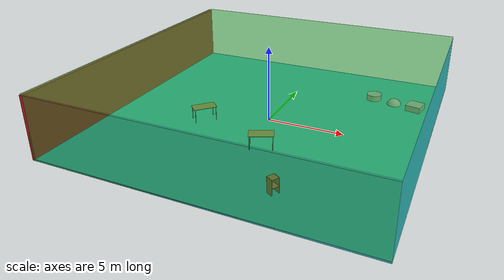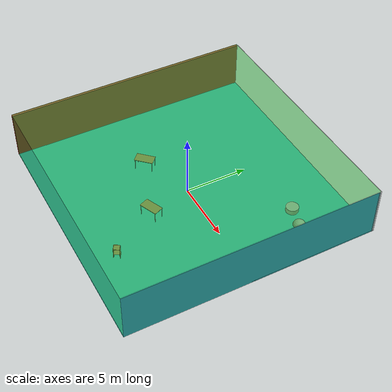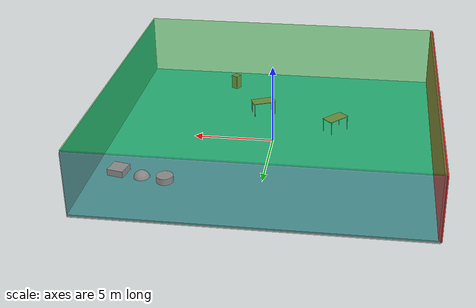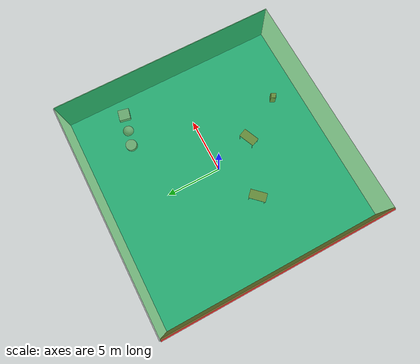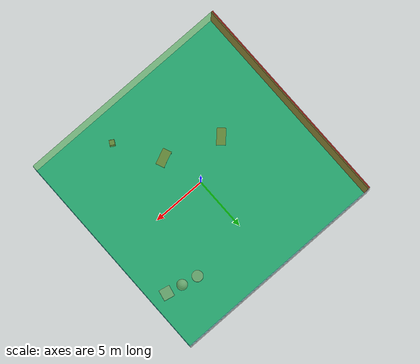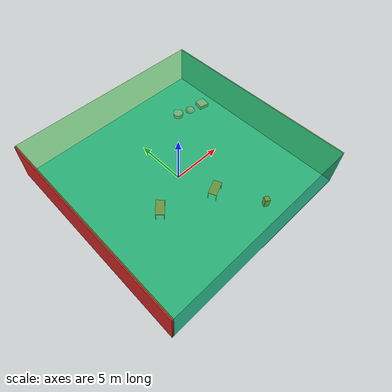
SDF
<sdf version="1.4">
 <world name="default">
  <physics type="ode">
   <max_step_size>0.001</max_step_size>
   <real_time_factor>1</real_time_factor>
   <real_time_update_rate>1000</real_time_update_rate>
   <gravity>0 0 -9.8</gravity>
  </physics>
  <scene><ambient>0.4 0.4 0.4 1</ambient><background>0.7 0.7 0.7 1</background><shadows>1</shadows></scene>
  <model name="Surrounding">
   <static>1</static>
   <link name="Ceiling">
    <collision name="Ceiling_Collision"><geometry><box><size>20 20 0.1</size></box></geometry></collision>
    <visual name="Ceiling_Visual">
     <geometry><box><size>20 20 0.1</size></box></geometry>
     <material>
      <script><uri>file://media/materials/scripts/gazebo.material</uri><name>Gazebo/GreenTransparent</name></script>
     </material>
    </visual>
    <pose>0 0 4.05 0 0 0</pose>
   </link>
   <link name="Wall_South">
    <collision name="Wall_South_Collision">
     <geometry><box><size>20 0 4</size></box></geometry>
     <pose>0 0 2 0 -0 0</pose>
    </collision>
    <visual name="Wall_South_Visual">
     <pose>0 0 2 0 -0 0</pose>
     <geometry><box><size>20 0 4</size></box></geometry>
     <material>
      <script><uri>file://media/materials/scripts/gazebo.material</uri><name>Gazebo/GreenTransparent</name></script>
     </material>
    </visual>
    <velocity_decay><linear>0</linear><angular>0</angular></velocity_decay>
    <pose>0 -10 0 0 -0 0</pose>
   </link>
   <link name="Wall_East">
    <collision name="Wall_21_Collision">
     <geometry><box><size>20 0 4</size></box></geometry>
     <pose>0 0 2 0 -0 0</pose>
    </collision>
    <visual name="Wall_21_Visual">
     <pose>0 0 2 0 -0 0</pose>
     <geometry><box><size>20 0 4</size></box></geometry>
     <material>
      <script>
       <uri>file://media/materials/scripts/gazebo.material</uri>
       <name>Gazebo/TurquoiseGlowOutline</name>
      </script>
     </material>
    </visual>
    <velocity_decay><linear>0</linear><angular>0</angular></velocity_decay>
    <pose>10 0 0 0 -0 1.5708</pose>
   </link>
   <link name="Wall_North">
    <collision name="Wall_22_Collision">
     <geometry><box><size>20 0.2 4</size></box></geometry>
     <pose>0 0 2 0 -0 0</pose>
    </collision>
    <visual name="Wall_22_Visual">
     <pose>0 0 2 0 -0 0</pose>
     <geometry><box><size>20 0.2 4</size></box></geometry>
     <material>
      <script><uri>file://media/materials/scripts/gazebo.material</uri><name>Gazebo/GreyTransparent</name></script>
     </material>
    </visual>
    <velocity_decay><linear>0</linear><angular>0</angular></velocity_decay>
    <pose>0 10 0 0 -0 0</pose>
   </link>
   <link name="Wall_West">
    <collision name="Wall_23_Collision">
     <geometry><box><size>20 0.2 4</size></box></geometry>
     <pose>0 0 2 0 -0 0</pose>
    </collision>
    <visual name="Wall_23_Visual">
     <pose>0 0 2 0 -0 0</pose>
     <geometry><box><size>20 0.2 4</size></box></geometry>
     <material>
      <script><uri>file://media/materials/scripts/gazebo.material</uri><name>Gazebo/RedBright</name></script>
     </material>
    </visual>
    <velocity_decay><linear>0</linear><angular>0</angular></velocity_decay>
    <pose>-10 0 0 0 0 -1.5708</pose>
   </link>
   <link name="Ground_link">
    <collision name="collision">
     <pose>0 0 .05 0 -0 0</pose>
     <geometry><box><size>20 20 0.1</size></box></geometry>
    </collision>
    <visual name="visual">
     <pose>0 0 .05 0 -0 0</pose>
     <geometry><box><size>20 20 0.1</size></box></geometry>
     <material>
      <script><uri>file://media/materials/scripts/gazebo.material</uri><name>Gazebo/Turquoise</name></script>
     </material>
    </visual>
   </link>
   <static>1</static>
  </model>
  <spherical_coordinates>
   <surface_model>EARTH_WGS84</surface_model>
   <latitude_deg>0</latitude_deg>
   <longitude_deg>0</longitude_deg>
   <elevation>0</elevation>
   <heading_deg>0</heading_deg>
  </spherical_coordinates>
  <light name="lightball_0" type="diffuse">
   <diffuse>0.8 0.8 0.8 1</diffuse>
   <specular>0.2 0.2 0.2 1</specular>
   <attenuation>
    <range>100</range>
    <constant>0.7</constant>
    <linear>0.01</linear>
    <quadratic>0.001</quadratic>
   </attenuation>
   <direction>-0.5 0.1 -0.9</direction>
   <pose>-6.70714581352 -6.3535785581 2.4440066527 0 0 0</pose>
  </light>
  <light name="lightball_1" type="diffuse">
   <diffuse>0.8 0.8 0.8 1</diffuse>
   <specular>0.2 0.2 0.2 1</specular>
   <attenuation>
    <range>100</range>
    <constant>0.7</constant>
    <linear>0.01</linear>
    <quadratic>0.001</quadratic>
   </attenuation>
   <direction>-0.5 0.1 -0.9</direction>
   <pose>-0.66924364325 3.4015211659 2.28799170879 0 0 0</pose>
  </light>
  <light name="lightball_2" type="diffuse">
   <diffuse>0.8 0.8 0.8 1</diffuse>
   <specular>0.2 0.2 0.2 1</specular>
   <attenuation>
    <range>100</range>
    <constant>0.7</constant>
    <linear>0.01</linear>
    <quadratic>0.001</quadratic>
   </attenuation>
   <direction>-0.5 0.1 -0.9</direction>
   <pose>3.69521526201 3.82753752504 0.636685688271 0 0 0</pose>
  </light>
  <light name="lightball_3" type="diffuse">
   <diffuse>0.8 0.8 0.8 1</diffuse>
   <specular>0.2 0.2 0.2 1</specular>
   <attenuation>
    <range>100</range>
    <constant>0.7</constant>
    <linear>0.01</linear>
    <quadratic>0.001</quadratic>
   </attenuation>
   <direction>-0.5 0.1 -0.9</direction>
   <pose>-9.76417470582 4.37853455557 1.60886567205 0 0 0</pose>
  </light>
  <light name="lightball_4" type="diffuse">
   <diffuse>0.8 0.8 0.8 1</diffuse>
   <specular>0.2 0.2 0.2 1</specular>
   <attenuation>
    <range>100</range>
    <constant>0.7</constant>
    <linear>0.01</linear>
    <quadratic>0.001</quadratic>
   </attenuation>
   <direction>-0.5 0.1 -0.9</direction>
   <pose>9.50155543482 6.87350162692 0.683492519545 0 0 0</pose>
  </light>
  <light name="lightball_5" type="diffuse">
   <diffuse>0.8 0.8 0.8 1</diffuse>
   <specular>0.2 0.2 0.2 1</specular>
   <attenuation>
    <range>100</range>
    <constant>0.7</constant>
    <linear>0.01</linear>
    <quadratic>0.001</quadratic>
   </attenuation>
   <direction>-0.5 0.1 -0.9</direction>
   <pose>7.6427882325 -5.07187019604 2.17408840843 0 0 0</pose>
  </light>
  <light name="lightball_6" type="diffuse">
   <diffuse>0.8 0.8 0.8 1</diffuse>
   <specular>0.2 0.2 0.2 1</specular>
   <attenuation>
    <range>100</range>
    <constant>0.7</constant>
    <linear>0.01</linear>
    <quadratic>0.001</quadratic>
   </attenuation>
   <direction>-0.5 0.1 -0.9</direction>
   <pose>-1.86803191008 0.446100825661 1.48907072094 0 0 0</pose>
  </light>
  <light name="lightball_7" type="diffuse">
   <diffuse>0.8 0.8 0.8 1</diffuse>
   <specular>0.2 0.2 0.2 1</specular>
   <attenuation>
    <range>100</range>
    <constant>0.7</constant>
    <linear>0.01</linear>
    <quadratic>0.001</quadratic>
   </attenuation>
   <direction>-0.5 0.1 -0.9</direction>
   <pose>8.74248723013 -6.63001064468 1.02873957644 0 0 0</pose>
  </light>
  <include><uri>model://table</uri><pose>-3.82908669728 -1.73564269397 0 0 0 0.805284901179</pose></include>
  <include><uri>model://table</uri><pose>1.0930992638 -3.5936600409 0 0 0 0.404142205302</pose></include>
  <include><uri>model://cabinet</uri><pose>3.55466152886 -7.51061302058 0 0 0 2.60081726618</pose></include>
  <include>
   <uri>model://textured_shapes</uri>
   <pose>7.0236573141 5.57594497361 0 0 0 1.35845327412</pose>
  </include>
 </world>
</sdf>

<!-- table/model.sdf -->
<sdf version="1.5">
  <model name="table">
    <static>true</static>
    <link name="link">
      <collision name="surface">
        <pose>0 0 1.0 0 0 0</pose>
        <geometry>
          <box>
            <size>1.5 0.8 0.03</size>
          </box>
        </geometry>
        <surface>
          <friction>
            <ode>
              <mu>0.6</mu>
              <mu2>0.6</mu2>
            </ode>
          </friction>
        </surface>
      </collision>
      <visual name="visual1">
        <pose>0 0 1.0 0 0 0</pose>
        <geometry>
          <box>
            <size>1.5 0.8 0.03</size>
          </box>
        </geometry>
        <material>
          <script>
            <uri>model://media/materials/scripts/gazebo.material</uri>
            <name>Gazebo/Wood</name>
          </script>
        </material>
      </visual>
      <collision name="front_left_leg">
        <pose>0.68 0.38 0.5 0 0 0</pose>
        <geometry>
          <cylinder>
            <radius>0.02</radius>
            <length>1.0</length>
          </cylinder>
        </geometry>
      </collision>
      <visual name="front_left_leg">
        <pose>0.68 0.38 0.5 0 0 0</pose>
        <geometry>
          <cylinder>
            <radius>0.02</radius>
            <length>1.0</length>
          </cylinder>
        </geometry>
        <material>
          <script>
            <uri>model://media/materials/scripts/gazebo.material</uri>
            <name>Gazebo/Grey</name>
          </script>
        </material>
      </visual>
      <collision name="front_right_leg">
        <pose>0.68 -0.38 0.5 0 0 0</pose>
        <geometry>
          <cylinder>
            <radius>0.02</radius>
            <length>1.0</length>
          </cylinder>
        </geometry>
      </collision>
      <visual name="front_right_leg">
        <pose>0.68 -0.38 0.5 0 0 0</pose>
        <geometry>
          <cylinder>
            <radius>0.02</radius>
            <length>1.0</length>
          </cylinder>
        </geometry>
        <material>
          <script>
            <uri>model://media/materials/scripts/gazebo.material</uri>
            <name>Gazebo/Grey</name>
          </script>
        </material>
      </visual>
      <collision name="back_right_leg">
        <pose>-0.68 -0.38 0.5 0 0 0</pose>
        <geometry>
          <cylinder>
            <radius>0.02</radius>
            <length>1.0</length>
          </cylinder>
        </geometry>
      </collision>
      <visual name="back_right_leg">
        <pose>-0.68 -0.38 0.5 0 0 0</pose>
        <geometry>
          <cylinder>
            <radius>0.02</radius>
            <length>1.0</length>
          </cylinder>
        </geometry>
        <material>
          <script>
            <uri>model://media/materials/scripts/gazebo.material</uri>
            <name>Gazebo/Grey</name>
          </script>
        </material>
      </visual>
      <collision name="back_left_leg">
        <pose>-0.68 0.38 0.5 0 0 0</pose>
        <geometry>
          <cylinder>
            <radius>0.02</radius>
            <length>1.0</length>
          </cylinder>
        </geometry>
      </collision>
      <visual name="back_left_leg">
        <pose>-0.68 0.38 0.5 0 0 0</pose>
        <geometry>
          <cylinder>
            <radius>0.02</radius>
            <length>1.0</length>
          </cylinder>
        </geometry>
        <material>
          <script>
            <uri>model://media/materials/scripts/gazebo.material</uri>
            <name>Gazebo/Grey</name>
          </script>
        </material>
      </visual>
    </link>
  </model>
</sdf>

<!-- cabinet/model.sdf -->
<sdf version="1.5">
  <model name="cabinet">
    <static>true</static>
    <link name="cabinet_bottom_plate">
      <inertial>
        <pose>0 0 -1 0 0 0</pose>
        <inertia>
          <ixx>2.050000</ixx>
          <ixy>0</ixy>
          <ixz>0</ixz>
          <iyy>2.050000</iyy>
          <iyz>0</iyz>
          <izz>2.050000</izz>
        </inertia>
        <mass>25.000000</mass>
      </inertial>
      <collision name="cabinet_bottom_plate_geom">
        <pose>0 0 0.010000 0 0 0</pose>
        <geometry>
          <box>
            <size>0.450000 0.450000 0.020000</size>
          </box>
        </geometry>
      </collision>
      <visual name="cabinet_bottom_plate_geom_visual">
        <pose>0 0 0.010000 0 0 0</pose>
        <geometry>
          <box>
            <size>0.450000 0.450000 0.020000</size>
          </box>
        </geometry>
        <material>
          <script>
            <uri>model://media/materials/scripts/gazebo.material</uri>
            <name>Gazebo/Wood</name>
          </script>
        </material>
      </visual>
      <collision name="cabinet_bottom_plate_geom_cabinet_back_plate">
        <pose>0.235000 0 0.510000 0 0 0</pose>
        <geometry>
          <box>
            <size>0.020000 0.450000 1.020000</size>
          </box>
        </geometry>
      </collision>
      <visual name="cabinet_bottom_plate_geom_cabinet_back_plate_visual">
        <pose>0.235000 0 0.510000 0 0 0</pose>
        <geometry>
          <box>
            <size>0.020000 0.450000 1.020000</size>
          </box>
        </geometry>
        <material>
          <script>
            <uri>model://media/materials/scripts/gazebo.material</uri>
            <name>Gazebo/Wood</name>
          </script>
        </material>
      </visual>
      <collision name="cabinet_bottom_plate_geom_cabinet_left_plate">
        <pose>0 0.235000 0.510000 0 0 0</pose>
        <geometry>
          <box>
            <size>0.450000 0.020000 1.020000</size>
          </box>
        </geometry>
      </collision>
      <visual name="cabinet_bottom_plate_geom_cabinet_left_plate_visual">
        <pose>0 0.235000 0.510000 0 0 0</pose>
        <geometry>
          <box>
            <size>0.450000 0.020000 1.020000</size>
          </box>
        </geometry>
        <material>
          <script>
            <uri>model://media/materials/scripts/gazebo.material</uri>
            <name>Gazebo/Wood</name>
          </script>
        </material>
      </visual>
      <collision name="cabinet_bottom_plate_geom_cabinet_middle_plate">
        <pose>0 0 0.510000 0 0 0</pose>
        <geometry>
          <box>
            <size>0.450000 0.450000 0.020000</size>
          </box>
        </geometry>
      </collision>
      <visual name="cabinet_bottom_plate_geom_cabinet_middle_plate_visual">
        <pose>0 0 0.510000 0 0 0</pose>
        <geometry>
          <box>
            <size>0.450000 0.450000 0.020000</size>
          </box>
        </geometry>
        <material>
          <script>
            <uri>model://media/materials/scripts/gazebo.material</uri>
            <name>Gazebo/Wood</name>
          </script>
        </material>
      </visual>
      <collision name="cabinet_bottom_plate_geom_cabinet_right_plate">
        <pose>0 -0.235000 0.510000 0 0 0</pose>
        <geometry>
          <box>
            <size>0.450000 0.020000 1.020000</size>
          </box>
        </geometry>
      </collision>
      <visual name="cabinet_bottom_plate_geom_cabinet_right_plate_visual">
        <pose>0 -0.235000 0.510000 0 0 0</pose>
        <geometry>
          <box>
            <size>0.450000 0.020000 1.020000</size>
          </box>
        </geometry>
        <material>
          <script>
            <uri>model://media/materials/scripts/gazebo.material</uri>
            <name>Gazebo/Wood</name>
          </script>
        </material>
      </visual>
      <collision name="cabinet_bottom_plate_geom_cabinet_top_plate">
        <pose>0 0 1.010000 0 0 0</pose>
        <geometry>
          <box>
            <size>0.450000 0.450000 0.020000</size>
          </box>
        </geometry>
      </collision>
      <visual name="cabinet_bottom_plate_geom_cabinet_top_plate_visual">
        <pose>0 0 1.010000 0 0 0</pose>
        <geometry>
          <box>
            <size>0.450000 0.450000 0.020000</size>
          </box>
        </geometry>
        <material>
          <script>
            <uri>model://media/materials/scripts/gazebo.material</uri>
            <name>Gazebo/Wood</name>
          </script>
        </material>
      </visual>
    </link>
  </model>
</sdf>

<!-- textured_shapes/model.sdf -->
<sdf version="1.6">
  <model name="textured_shapes">
    <pose>0 0 0.5 0 0 0</pose>
    <link name="box">
      <pose>0 -1.5 0 0 0 0</pose>
      <collision name="collision">
        <geometry>
          <box>
            <size>1 1 1</size>
          </box>
        </geometry>
      </collision>
      <visual name="visual">
        <geometry>
          <box>
            <size>1 1 1</size>
          </box>
        </geometry>
        <material>
          <script>
            <uri>model://../model_source/models/textured_shapes/materials/scripts</uri>
            <uri>model://../model_source/models/textured_shapes/materials/textures</uri>
            <name>TexturedShape/Squares</name>
          </script>
        </material>
      </visual>
    </link>
    <link name="sphere">
      <collision name="collision">
        <geometry>
          <sphere>
            <radius>0.5</radius>
          </sphere>
        </geometry>
      </collision>
      <visual name="visual">
        <geometry>
          <sphere>
            <radius>0.5</radius>
          </sphere>
        </geometry>
        <material>
          <script>
            <uri>model://../model_source/models/textured_shapes/materials/scripts</uri>
            <uri>model://../model_source/models/textured_shapes/materials/textures</uri>
            <name>TexturedShape/Squares</name>
          </script>
        </material>
      </visual>
    </link>
    <link name="cylinder">
      <pose>0 1.5 0 0 0 0</pose>
      <collision name="collision">
        <geometry>
          <cylinder>
            <radius>0.5</radius>
            <length>1</length>
          </cylinder>
        </geometry>
      </collision>
      <visual name="visual">
        <geometry>
          <cylinder>
            <radius>0.5</radius>
            <length>1</length>
          </cylinder>
        </geometry>
        <material>
          <script>
            <uri>model://../model_source/models/textured_shapes/materials/scripts</uri>
            <uri>model://../model_source/models/textured_shapes/materials/textures</uri>
            <name>TexturedShape/Squares</name>
          </script>
        </material>
      </visual>
    </link>
  </model>
</sdf>
